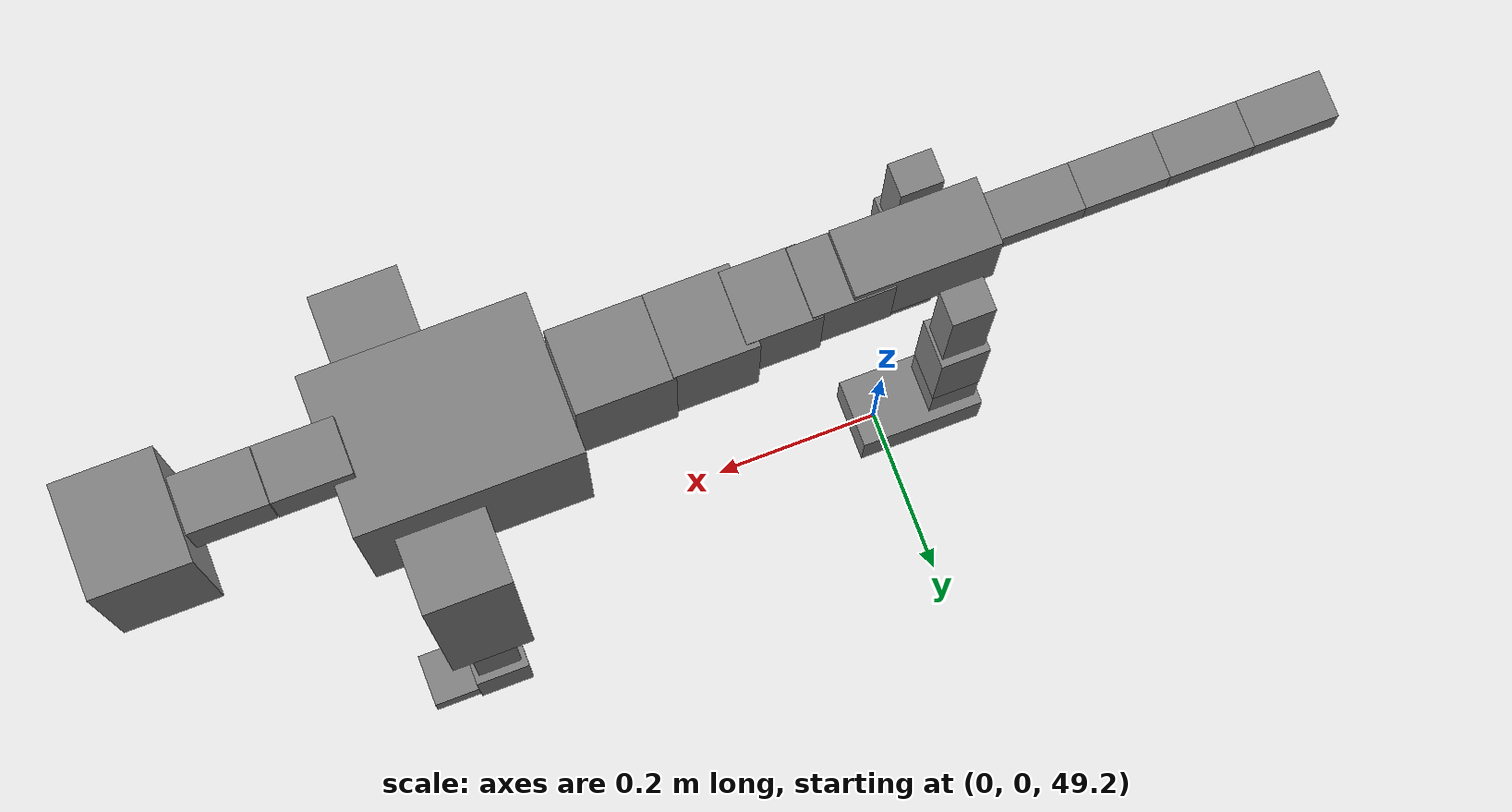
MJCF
<mujoco model="dog">

    <default>
        <joint armature="0.02" stiffness="1" damping="0.2" limited="true"/>
        <geom condim="3" friction="1 0.05 0.05" margin="0.01"/>
        <motor ctrllimited="true" ctrlrange="-1.0 1.0" forcelimited="true" gear="50"/>
    </default>

    <compiler inertiafromgeom="true" angle="radian"/>

    <option timestep="0.016" iterations="50" tolerance="1e-10" solver="Newton" jacobian="dense" cone="pyramidal"/>

    <size nconmax="20000" njmax="60000" nstack="5000000"/>
    <visual>
        <map force="0.1" zfar="30"/>
        <rgba haze="0.15 0.25 0.35 1"/>
        <quality shadowsize="2048"/>
        <global offwidth="800" offheight="800"/>
    </visual>

    <asset>
        <texture type="skybox" builtin="gradient" rgb1="0.3 0.5 0.7" rgb2="0 0 0" width="512" height="512"/>
        <texture name="texplane" type="2d" builtin="checker" rgb1=".2 .3 .4" rgb2=".1 0.15 0.2" width="512" height="512"
                 mark="cross" markrgb=".8 .8 .8"/>
        <texture name="texgeom" type="cube" builtin="flat" mark="cross" width="127" height="1278" rgb1="0.8 0.6 0.4"
                 rgb2="0.8 0.6 0.4" markrgb="1 1 1" random="0.01"/>

        <material name="matplane" reflectance="0.3" texture="texplane" texrepeat="1 1" texuniform="true"/>
        <material name="matgeom" texture="texgeom" texuniform="true" rgba="0.8 0.6 .4 1"/>
    </asset>

    <worldbody>
        <geom name="floor" pos="0 0 0" size="0 0 .25" type="plane" material="matplane" condim="3"/>

        <light directional="false" diffuse=".2 .2 .2" specular="0 0 0" pos="0 0 5" dir="0 0 -1" castshadow="false"/>
        <light mode="targetbodycom" target="torso" directional="false" diffuse=".8 .8 .8" specular="0.3 0.3 0.3"
               pos="0 0 4.0" dir="0 0 -1"/>

        <body name="root" pos="0 0 50">
            <freejoint name="root_1"/>
            <geom type="box" pos="0 0 -0.02" size="0.0774  0.0358  0.063" density="2030"/>

            <body name="spine1" pos="0.054 0 0">
                <joint name="spine1_y" axis="0 1 0" range="0 0.7" limited="true"/>
                <geom type="box" pos="0.02375 0 -0.03" size="0.04375  0.0375  0.05985" density="2030"/>

                <body name="spine2" pos="0.0612 0 0">
                    <joint name="spine2_y" axis="0 1 0" range="-0.15 0.15" limited="true"/>
                    <geom type="box" pos="0.03555  0  -0.04" size="0.04055  0.039  0.06615" density="2030"/>

                    <body name="spine3" pos="0.0730 0 0">
                        <joint name="spine3_y" axis="0 1 0" range="-0.15 0.15" limited="true"/>
                        <geom type="box" pos="0.03555  0  -0.057" size="0.04555  0.0445  0.081" density="2030"/>

                        <body name="spine4" pos="0.0780 0 0">
                            <joint name="spine4_y" axis="0 1 0" range="-0.15 0.15" limited="true"/>
                            <geom type="box" pos="0.05265  0  -0.07" size="0.05265  0.045  0.09135" density="2030"/>

                            <body name="torso" pos="0.1082 0 0">
                                <joint name="torso_y" axis="0 1 0" range="-0.15 0.15" limited="true"/>
                                <geom type="box" pos="0.11925  0  -0.085" size="0.11925  0.085  0.11745"
                                      density="2030"/>

                                <body name="neck1" pos="0.2160  0   0.0180">
                                    <joint name="neck1_y" axis="0 1 0" range="-1.2  -1" limited="true"/>
                                    <geom type="box" pos="0.0423  0  0" size="0.0423  0.03  0.036" density="2325"/>

                                    <body name="neck2" pos="0.0853  0  0">
                                        <joint name="neck2_y" axis="0 1 0" range="0.1  0" limited="true"/>
                                        <geom type="box" pos="0.0423  0  0" size="0.0423  0.03  0.036" density="2325"/>

                                        <body name="head" pos="0.0853  0  0">
                                            <joint name="head_y" axis="0 1 0" range="-0.3  -0.2" limited="true"/>
                                            <geom type="box" pos="0.0531  0  -0.055" size="0.0531  0.06  0.1044"
                                                  density="4030"/>

                                        </body>
                                    </body>
                                </body>

                                <body name="front_shoulder" pos="0.156  0   -0.0480">
                                    <joint name="front_shoulder_y" axis="0 1 0" range="-1 1.5" limited="true"/>
                                    <geom type="box" pos="0 0.13 -0.1752" size="0.0472  0.0403  0.2019" density="1158"/>
                                    <geom type="box" pos="0 -0.13 -0.1752" size="0.0472  0.0403  0.2019"
                                          density="1158"/>

                                    <body name="front_elbow" pos="0  0  -0.3505">
                                        <joint name="front_elbow_y" axis="0 1 0" range="-2 0" limited="true"/>
                                        <geom type="box" pos="0 0.13 -0.1183" size="0.0260  0.0266  0.1183"
                                              density="1081"/>
                                        <geom type="box" pos="0 -0.13 -0.1183" size="0.0260  0.0266  0.1183"
                                              density="1081"/>

                                        <body name="front_wrist" pos="0  0  -0.2365">
                                            <joint name="front_wrist_y" axis="0 1 0" range="-0.2 0" limited="true"/>
                                            <geom type="box" pos="0 0.13 -0.0377" size="0.0321  0.0357  0.0508"
                                                  density="1664"/>
                                            <geom type="box" pos="0 -0.13 -0.0377" size="0.0321  0.0357  0.0508"
                                                  density="1664"/>

                                            <body name="front_finger_end" pos="0  0  -0.0754">
                                                <joint name="front_finger_y" axis="0 1 0" range="-0.4 1"
                                                       limited="true"/>
                                                <geom type="box" pos="0.0307  0.13  -0.0056"
                                                      size="0.0563  0.0307  0.0206" density="1515"/>
                                                <geom type="box" pos="0.0307  -0.13  -0.0056"
                                                      size="0.0563  0.0307  0.0206" density="1515"/>

                                            </body>

                                        </body>
                                    </body>
                                </body>

                            </body>
                        </body>
                    </body>
                </body>
            </body>

            <body name="back_hip" pos="-0.03 0 -0.018">
                <joint name="back_hip_y" axis="0 1 0" range="-1.5 0.3" limited="true"/>
                <geom type="box" pos="0 0.07 -0.0701" size="0.0232  0.0182  0.0929" density="1154"/>
                <geom type="box" pos="0 -0.07 -0.0701" size="0.0232  0.0182  0.0929" density="1154"/>

                <body name="back_knee" pos="0  0  -0.1402">
                    <joint name="back_knee_y" axis="0 1 0" range="0 2.8" limited="true"/>
                    <geom type="box" pos="0 0.07 -0.0593" size="0.0267  0.0263  0.0749" density="1227"/>
                    <geom type="box" pos="0 -0.07 -0.0593" size="0.0267  0.0263  0.0749" density="1227"/>

                    <body name="back_ankle" pos="0  0  -0.1186">
                        <joint name="back_ankle_y" axis="0 1 0" range="-2.2 0" limited="true"/>
                        <geom type="box" pos="0 0.07 -0.0466" size="0.0262  0.0262  0.0578" density="1284"/>
                        <geom type="box" pos="0 -0.07 -0.0466" size="0.0262  0.0262  0.0578" density="1284"/>

                        <body name="back_toe_end" pos="0  0  -0.0931">
                            <joint name="back_toe_y" axis="0 1 0" range="-0.4 1" limited="true"/>
                            <geom type="box" pos="0.0374  0.07  -0.0197" size="0.0685  0.0374  0.0347" density="1515"/>
                            <geom type="box" pos="0.0374  -0.07  -0.0197" size="0.0685  0.0374  0.0347" density="1515"/>

                        </body>
                    </body>
                </body>
            </body>

            <body name="tail1" pos="-0.074 0 -0.006">
                <joint name="tail1_y" axis="0 1 0" range="-0.2 0.2" limited="true"/>
                <geom type="box" pos="-0.0536  0  0" size="0.045  0.025  0.0175" density="1587"/>

                <body name="tail2" pos="-0.09 0 0">
                    <joint name="tail2_y" axis="0 1 0" range="-0.2 0.2" limited="true"/>
                    <geom type="box" pos="-0.0536  0  0" size="0.045  0.025  0.0175" density="1587"/>

                    <body name="tail3" pos="-0.09 0 0">
                        <joint name="tail3_y" axis="0 1 0" range="-0.2 0.2" limited="true"/>
                        <geom type="box" pos="-0.0536  0  0" size="0.045  0.025  0.0175" density="1587"/>

                        <body name="tail4" pos="-0.09 0 0">
                            <joint name="tail4_y" axis="0 1 0" range="-0.2 0.2" limited="true"/>
                            <geom type="box" pos="-0.0536  0  0" size="0.045  0.025  0.0175" density="1587"/>

                        </body>
                    </body>
                </body>
            </body>
        </body>
    </worldbody>

    <actuator>
        <motor joint="spine1_y" forcerange="-150 150     "/>
        <motor joint="spine2_y" forcerange="-150 150     "/>
        <motor joint="spine3_y" forcerange="-150 150     "/>
        <motor joint="spine4_y" forcerange="-150 150     "/>
        <motor joint="torso_y" forcerange="-150 150     "/>
        <motor joint="neck1_y" forcerange="-100 100       "/>
        <motor joint="neck2_y" forcerange="-100 100       "/>
        <motor joint="head_y" forcerange="-150 150       "/>
        <motor joint="front_shoulder_y" forcerange="-178.86 189.92"/>
        <motor joint="front_elbow_y" forcerange="-127.35 165.76"/>
        <motor joint="front_wrist_y" forcerange="-141.69 143.84"/>
        <motor joint="front_finger_y" forcerange="-51.33 72.56"/>
        <motor joint="back_hip_y" forcerange="-242.29 200.21"/>
        <motor joint="back_knee_y" forcerange="-289.25 293.29"/>
        <motor joint="back_angle_y" forcerange="-198.24 121.57"/>
        <motor joint="back_toe_y" forcerange="-88.65 130.25"/>
        <motor joint="tail1_y" forcerange="-50 50     "/>
        <motor joint="tail2_y" forcerange="-50 50     "/>
        <motor joint="tail3_y" forcerange="-50 50     "/>
        <motor joint="tail4_y" forcerange="-50 50     "/>
    </actuator>
</mujoco>
